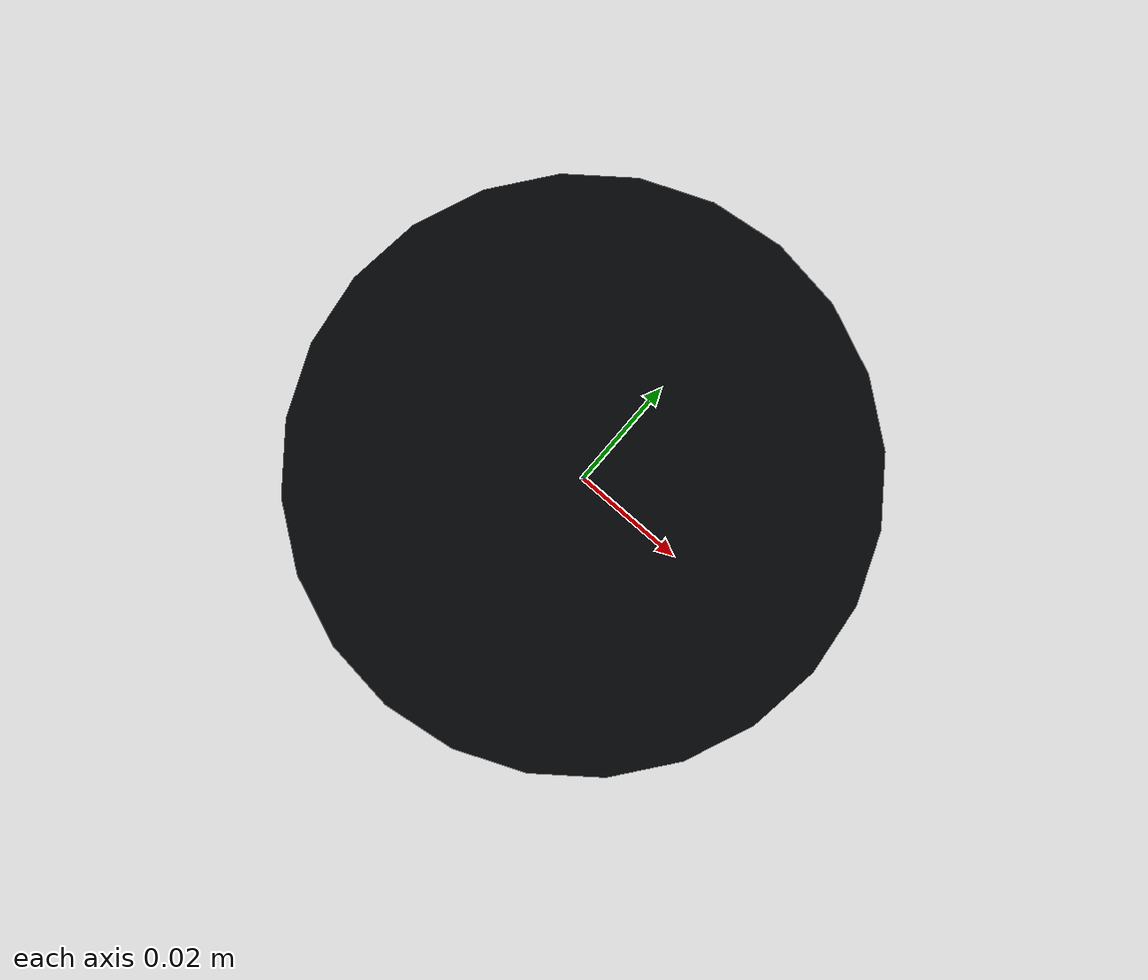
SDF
<?xml version="1.0"?>
<sdf version="1.10">
  <model name="mid360_3d_lidar_sensor_only">
    <static>false</static>
    <self_collide>false</self_collide>
    <link name="sensor_link">
      <gravity>false</gravity>
      <kinematic>true</kinematic>
      <visual name="mid360_body">
        <pose>0 0 0 0 0 0</pose>
        <geometry>
          <cylinder>
            <radius>0.045</radius>
            <length>0.065</length>
          </cylinder>
        </geometry>
        <material>
          <ambient>0.015 0.018 0.020 1</ambient>
          <diffuse>0.018 0.022 0.026 1</diffuse>
          <specular>0.25 0.25 0.25 1</specular>
        </material>
      </visual>
      <sensor name="mid360_sim_lidar" type="gpu_lidar">
        <pose>0 0 0 0 0 0</pose>
        <always_on>1</always_on>
        <update_rate>10</update_rate>
        <visualize>false</visualize>
        <topic>/mid360/lidar</topic>
        <lidar>
          <scan>
            <horizontal>
              <samples>500</samples>
              <resolution>1</resolution>
              <min_angle>-3.14159265</min_angle>
              <max_angle>3.14159265</max_angle>
            </horizontal>
            <vertical>
              <samples>40</samples>
              <resolution>1</resolution>
              <min_angle>-0.12217304764</min_angle>
              <max_angle>0.90757121104</max_angle>
            </vertical>
          </scan>
          <range>
            <min>0.10</min>
            <max>40.0</max>
            <resolution>0.02</resolution>
          </range>
          <noise>
            <type>gaussian</type>
            <mean>0.0</mean>
            <stddev>0.02</stddev>
          </noise>
        </lidar>
      </sensor>
    </link>
  </model>
</sdf>
